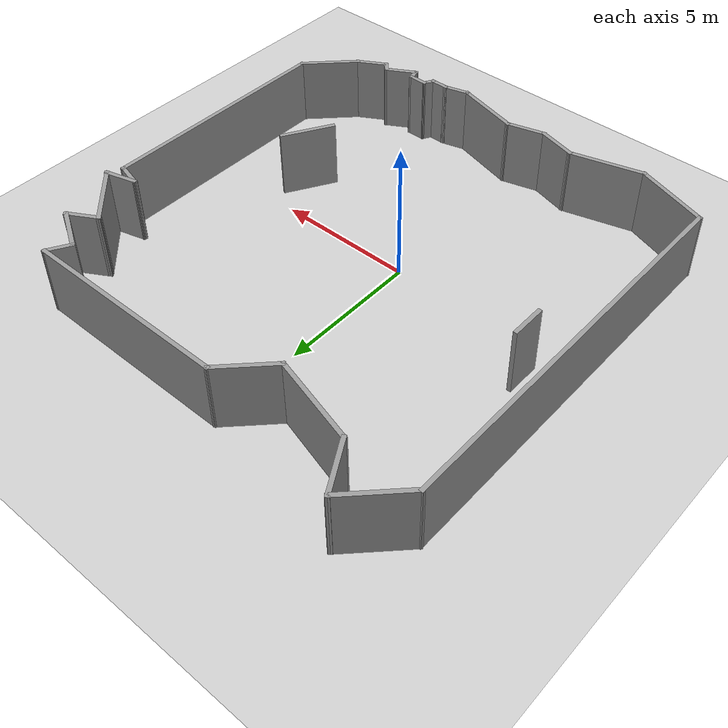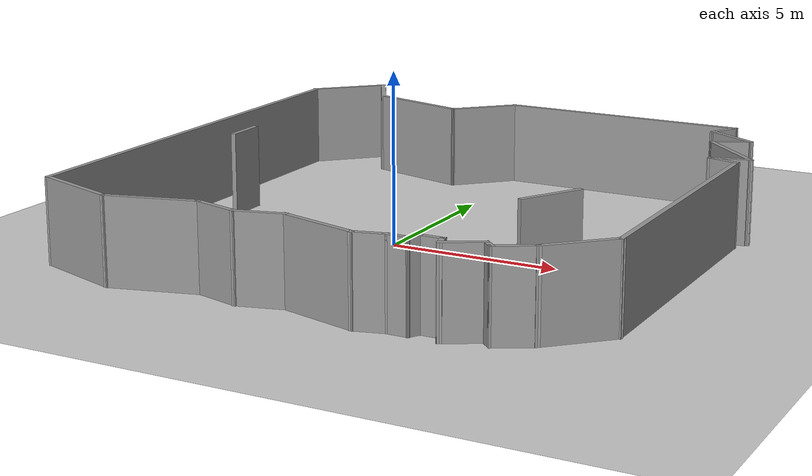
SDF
<sdf version="1.6">
 <world name="default">
  <light name="sun" type="directional">
   <pose>0 0 10 0 -0 0</pose>
   <diffuse>0.8 0.8 0.8 1</diffuse>
   <specular>0.2 0.2 0.2 1</specular>
   <attenuation>
    <range>1000</range>
    <constant>0.9</constant>
    <linear>0.01</linear>
    <quadratic>0.001</quadratic>
   </attenuation>
   <direction>-0.5 0.1 -0.9</direction>
  </light>
  <model name="ground_plane">
   <static>1</static>
   <link name="link">
    <collision name="collision">
     <geometry><plane><normal>0 0 1</normal><size>100 100</size></plane></geometry>
     <surface>
      <contact><collide_bitmask>65535</collide_bitmask></contact>
      <friction><ode><mu>100</mu><mu2>50</mu2></ode></friction>
     </surface>
    </collision>
    <visual name="visual">
     <cast_shadows>0</cast_shadows>
     <geometry><plane><normal>0 0 1</normal><size>100 100</size></plane></geometry>
     <material>
      <script><uri>file://media/materials/scripts/gazebo.material</uri><name>Gazebo/Grey</name></script>
     </material>
    </visual>
   </link>
  </model>
  <gravity>0 0 -9.8</gravity>
  <magnetic_field>6e-06 2.3e-05 -4.2e-05</magnetic_field>
  <atmosphere type="adiabatic"/>
  <physics name="default_physics" default="0" type="ode">
   <max_step_size>0.001</max_step_size>
   <real_time_factor>1</real_time_factor>
   <real_time_update_rate>1000</real_time_update_rate>
  </physics>
  <scene><ambient>0.4 0.4 0.4 1</ambient><background>0.7 0.7 0.7 1</background><shadows>1</shadows></scene>
  <audio><device>default</device></audio>
  <spherical_coordinates>
   <surface_model>EARTH_WGS84</surface_model>
   <latitude_deg>0</latitude_deg>
   <longitude_deg>0</longitude_deg>
   <elevation>0</elevation>
   <heading_deg>0</heading_deg>
  </spherical_coordinates>
  <model name="odd_room">
   <pose>0.779779 1.20137 0 0 -0 0</pose>
   <link name="Wall_0">
    <collision name="Wall_0_Collision">
     <geometry><box><size>14 0.15 2.5</size></box></geometry>
     <pose>0 0 1.25 0 -0 0</pose>
    </collision>
    <visual name="Wall_0_Visual">
     <pose>0 0 1.25 0 -0 0</pose>
     <geometry><box><size>14 0.15 2.5</size></box></geometry>
     <material>
      <script><uri>file://media/materials/scripts/gazebo.material</uri><name>Gazebo/Grey</name></script>
      <ambient>1 1 1 1</ambient>
     </material>
     <meta><layer>0</layer></meta>
    </visual>
    <pose>-8.04285 -0.412639 0 0 -0 1.5708</pose>
   </link>
   <link name="Wall_1">
    <collision name="Wall_1_Collision">
     <geometry><box><size>2.5 0.15 2.5</size></box></geometry>
     <pose>0 0 1.25 0 -0 0</pose>
    </collision>
    <visual name="Wall_1_Visual">
     <pose>0 0 1.25 0 -0 0</pose>
     <geometry><box><size>2.5 0.15 2.5</size></box></geometry>
     <material>
      <script><uri>file://media/materials/scripts/gazebo.material</uri><name>Gazebo/Grey</name></script>
      <ambient>1 1 1 1</ambient>
     </material>
     <meta><layer>0</layer></meta>
    </visual>
    <pose>-7.212 7.34321 0 0 -0 0.785398</pose>
   </link>
   <link name="Wall_10">
    <collision name="Wall_10_Collision">
     <geometry><box><size>1.25 0.15 2.5</size></box></geometry>
     <pose>0 0 1.25 0 -0 0</pose>
    </collision>
    <visual name="Wall_10_Visual">
     <pose>0 0 1.25 0 -0 0</pose>
     <geometry><box><size>1.25 0.15 2.5</size></box></geometry>
     <material>
      <script><uri>file://media/materials/scripts/gazebo.material</uri><name>Gazebo/Grey</name></script>
      <ambient>1 1 1 1</ambient>
     </material>
     <meta><layer>0</layer></meta>
    </visual>
    <pose>7.51159 3.36433 0 0 -0 -2.87979</pose>
   </link>
   <link name="Wall_11">
    <collision name="Wall_11_Collision">
     <geometry><box><size>1 0.15 2.5</size></box></geometry>
     <pose>0 0 1.25 0 -0 0</pose>
    </collision>
    <visual name="Wall_11_Visual">
     <pose>0 0 1.25 0 -0 0</pose>
     <geometry><box><size>1 0.15 2.5</size></box></geometry>
     <material>
      <script><uri>file://media/materials/scripts/gazebo.material</uri><name>Gazebo/Grey</name></script>
      <ambient>1 1 1 1</ambient>
     </material>
     <meta><layer>0</layer></meta>
    </visual>
    <pose>7.39085 3.11198 0 0 -0 -0.261799</pose>
   </link>
   <link name="Wall_12">
    <collision name="Wall_12_Collision">
     <geometry><box><size>8.75 0.15 2.5</size></box></geometry>
     <pose>0 0 1.25 0 -0 0</pose>
    </collision>
    <visual name="Wall_12_Visual">
     <pose>0 0 1.25 0 -0 0</pose>
     <geometry><box><size>8.75 0.15 2.5</size></box></geometry>
     <material>
      <script><uri>file://media/materials/scripts/gazebo.material</uri><name>Gazebo/Grey</name></script>
      <ambient>1 1 1 1</ambient>
     </material>
     <meta><layer>0</layer></meta>
    </visual>
    <pose>7.80137 -1.29802 0 0 -0 -1.5708</pose>
   </link>
   <link name="Wall_13">
    <collision name="Wall_13_Collision">
     <geometry><box><size>2.25 0.15 2.5</size></box></geometry>
     <pose>0 0 1.25 0 -0 0</pose>
    </collision>
    <visual name="Wall_13_Visual">
     <pose>0 0 1.25 0 -0 0</pose>
     <geometry><box><size>2.25 0.15 2.5</size></box></geometry>
     <material>
      <script><uri>file://media/materials/scripts/gazebo.material</uri><name>Gazebo/Grey</name></script>
      <ambient>1 1 1 1</ambient>
     </material>
     <meta><layer>0</layer></meta>
    </visual>
    <pose>7.05891 -6.34048 0 0 -0 -2.35619</pose>
   </link>
   <link name="Wall_14">
    <collision name="Wall_14_Collision">
     <geometry><box><size>1.25 0.15 2.5</size></box></geometry>
     <pose>0 0 1.25 0 -0 0</pose>
    </collision>
    <visual name="Wall_14_Visual">
     <pose>0 0 1.25 0 -0 0</pose>
     <geometry><box><size>1.25 0.15 2.5</size></box></geometry>
     <material>
      <script><uri>file://media/materials/scripts/gazebo.material</uri><name>Gazebo/Grey</name></script>
      <ambient>1 1 1 1</ambient>
     </material>
     <meta><layer>0</layer></meta>
    </visual>
    <pose>5.84014 -7.35794 0 0 -0 -2.61799</pose>
   </link>
   <link name="Wall_15">
    <collision name="Wall_15_Collision">
     <geometry><box><size>0.5 0.15 2.5</size></box></geometry>
     <pose>0 0 1.25 0 -0 0</pose>
    </collision>
    <visual name="Wall_15_Visual">
     <pose>0 0 1.25 0 -0 0</pose>
     <geometry><box><size>0.5 0.15 2.5</size></box></geometry>
     <material>
      <script><uri>file://media/materials/scripts/gazebo.material</uri><name>Gazebo/Grey</name></script>
      <ambient>1 1 1 1</ambient>
     </material>
     <meta><layer>0</layer></meta>
    </visual>
    <pose>5.24008 -7.5092 0 0 -0 2.35619</pose>
   </link>
   <link name="Wall_16">
    <collision name="Wall_16_Collision">
     <geometry><box><size>1.25 0.15 2.5</size></box></geometry>
     <pose>0 0 1.25 0 -0 0</pose>
    </collision>
    <visual name="Wall_16_Visual">
     <pose>0 0 1.25 0 -0 0</pose>
     <geometry><box><size>1.25 0.15 2.5</size></box></geometry>
     <material>
      <script><uri>file://media/materials/scripts/gazebo.material</uri><name>Gazebo/Grey</name></script>
      <ambient>1 1 1 1</ambient>
     </material>
     <meta><layer>0</layer></meta>
    </visual>
    <pose>4.64002 -7.66046 0 0 -0 -2.61799</pose>
   </link>
   <link name="Wall_17">
    <collision name="Wall_17_Collision">
     <geometry><box><size>0.5 0.15 2.5</size></box></geometry>
     <pose>0 0 1.25 0 -0 0</pose>
    </collision>
    <visual name="Wall_17_Visual">
     <pose>0 0 1.25 0 -0 0</pose>
     <geometry><box><size>0.5 0.15 2.5</size></box></geometry>
     <material>
      <script><uri>file://media/materials/scripts/gazebo.material</uri><name>Gazebo/Grey</name></script>
      <ambient>1 1 1 1</ambient>
     </material>
     <meta><layer>0</layer></meta>
    </visual>
    <pose>4.11841 -7.76642 0 0 -0 1.8326</pose>
   </link>
   <link name="Wall_18">
    <collision name="Wall_18_Collision">
     <geometry><box><size>0.75 0.15 2.5</size></box></geometry>
     <pose>0 0 1.25 0 -0 0</pose>
    </collision>
    <visual name="Wall_18_Visual">
     <pose>0 0 1.25 0 -0 0</pose>
     <geometry><box><size>0.75 0.15 2.5</size></box></geometry>
     <material>
      <script><uri>file://media/materials/scripts/gazebo.material</uri><name>Gazebo/Grey</name></script>
      <ambient>1 1 1 1</ambient>
     </material>
     <meta><layer>0</layer></meta>
    </visual>
    <pose>3.77312 -7.59738 0 0 -0 3.14159</pose>
   </link>
   <link name="Wall_19">
    <collision name="Wall_19_Collision">
     <geometry><box><size>0.5 0.15 2.5</size></box></geometry>
     <pose>0 0 1.25 0 -0 0</pose>
    </collision>
    <visual name="Wall_19_Visual">
     <pose>0 0 1.25 0 -0 0</pose>
     <geometry><box><size>0.5 0.15 2.5</size></box></geometry>
     <material>
      <script><uri>file://media/materials/scripts/gazebo.material</uri><name>Gazebo/Grey</name></script>
      <ambient>1 1 1 1</ambient>
     </material>
     <meta><layer>0</layer></meta>
    </visual>
    <pose>3.38562 -7.74894 0 0 -0 -2.0944</pose>
   </link>
   <link name="Wall_2">
    <collision name="Wall_2_Collision">
     <geometry><box><size>2 0.15 2.5</size></box></geometry>
     <pose>0 0 1.25 0 -0 0</pose>
    </collision>
    <visual name="Wall_2_Visual">
     <pose>0 0 1.25 0 -0 0</pose>
     <geometry><box><size>2 0.15 2.5</size></box></geometry>
     <material>
      <script><uri>file://media/materials/scripts/gazebo.material</uri><name>Gazebo/Grey</name></script>
      <ambient>1 1 1 1</ambient>
     </material>
     <meta><layer>0</layer></meta>
    </visual>
    <pose>-5.91865 7.37299 0 0 -0 -1.0472</pose>
   </link>
   <link name="Wall_20">
    <collision name="Wall_20_Collision">
     <geometry><box><size>0.75 0.15 2.5</size></box></geometry>
     <pose>0 0 1.25 0 -0 0</pose>
    </collision>
    <visual name="Wall_20_Visual">
     <pose>0 0 1.25 0 -0 0</pose>
     <geometry><box><size>0.75 0.15 2.5</size></box></geometry>
     <material>
      <script><uri>file://media/materials/scripts/gazebo.material</uri><name>Gazebo/Grey</name></script>
      <ambient>1 1 1 1</ambient>
     </material>
     <meta><layer>0</layer></meta>
    </visual>
    <pose>2.99812 -7.90049 0 0 -0 3.14159</pose>
   </link>
   <link name="Wall_21">
    <collision name="Wall_21_Collision">
     <geometry><box><size>0.15 0.15 2.5</size></box></geometry>
     <pose>0 0 1.25 0 -0 0</pose>
    </collision>
    <visual name="Wall_21_Visual">
     <pose>0 0 1.25 0 -0 0</pose>
     <geometry><box><size>0.15 0.15 2.5</size></box></geometry>
     <material>
      <script><uri>file://media/materials/scripts/gazebo.material</uri><name>Gazebo/Grey</name></script>
      <ambient>1 1 1 1</ambient>
     </material>
     <meta><layer>0</layer></meta>
    </visual>
    <pose>2.69812 -7.90049 0 0 -0 0</pose>
   </link>
   <link name="Wall_22">
    <collision name="Wall_22_Collision">
     <geometry><box><size>1 0.15 2.5</size></box></geometry>
     <pose>0 0 1.25 0 -0 0</pose>
    </collision>
    <visual name="Wall_22_Visual">
     <pose>0 0 1.25 0 -0 0</pose>
     <geometry><box><size>1 0.15 2.5</size></box></geometry>
     <material>
      <script><uri>file://media/materials/scripts/gazebo.material</uri><name>Gazebo/Grey</name></script>
      <ambient>1 1 1 1</ambient>
     </material>
     <meta><layer>0</layer></meta>
    </visual>
    <pose>2.2876 -8.01049 0 0 -0 -2.87979</pose>
   </link>
   <link name="Wall_23">
    <collision name="Wall_23_Collision">
     <geometry><box><size>2.5 0.15 2.5</size></box></geometry>
     <pose>0 0 1.25 0 -0 0</pose>
    </collision>
    <visual name="Wall_23_Visual">
     <pose>0 0 1.25 0 -0 0</pose>
     <geometry><box><size>2.5 0.15 2.5</size></box></geometry>
     <material>
      <script><uri>file://media/materials/scripts/gazebo.material</uri><name>Gazebo/Grey</name></script>
      <ambient>1 1 1 1</ambient>
     </material>
     <meta><layer>0</layer></meta>
    </visual>
    <pose>0.742119 -7.81637 0 0 -0 2.87979</pose>
   </link>
   <link name="Wall_24">
    <collision name="Wall_24_Collision">
     <geometry><box><size>1.5 0.15 2.5</size></box></geometry>
     <pose>0 0 1.25 0 -0 0</pose>
    </collision>
    <visual name="Wall_24_Visual">
     <pose>0 0 1.25 0 -0 0</pose>
     <geometry><box><size>1.5 0.15 2.5</size></box></geometry>
     <material>
      <script><uri>file://media/materials/scripts/gazebo.material</uri><name>Gazebo/Grey</name></script>
      <ambient>1 1 1 1</ambient>
     </material>
     <meta><layer>0</layer></meta>
    </visual>
    <pose>-1.04484 -7.68696 0 0 -0 -2.87979</pose>
   </link>
   <link name="Wall_25">
    <collision name="Wall_25_Collision">
     <geometry><box><size>1.5 0.15 2.5</size></box></geometry>
     <pose>0 0 1.25 0 -0 0</pose>
    </collision>
    <visual name="Wall_25_Visual">
     <pose>0 0 1.25 0 -0 0</pose>
     <geometry><box><size>1.5 0.15 2.5</size></box></geometry>
     <material>
      <script><uri>file://media/materials/scripts/gazebo.material</uri><name>Gazebo/Grey</name></script>
      <ambient>1 1 1 1</ambient>
     </material>
     <meta><layer>0</layer></meta>
    </visual>
    <pose>-2.34884 -7.68696 0 0 -0 2.87979</pose>
   </link>
   <link name="Wall_26">
    <collision name="Wall_26_Collision">
     <geometry><box><size>2.75 0.15 2.5</size></box></geometry>
     <pose>0 0 1.25 0 -0 0</pose>
    </collision>
    <visual name="Wall_26_Visual">
     <pose>0 0 1.25 0 -0 0</pose>
     <geometry><box><size>2.75 0.15 2.5</size></box></geometry>
     <material>
      <script><uri>file://media/materials/scripts/gazebo.material</uri><name>Gazebo/Grey</name></script>
      <ambient>1 1 1 1</ambient>
     </material>
     <meta><layer>0</layer></meta>
    </visual>
    <pose>-4.25655 -7.84873 0 0 -0 -2.87979</pose>
   </link>
   <link name="Wall_27">
    <collision name="Wall_27_Collision">
     <geometry><box><size>2.81876 0.15 2.5</size></box></geometry>
     <pose>0 0 1.25 0 -0 0</pose>
    </collision>
    <visual name="Wall_27_Visual">
     <pose>0 0 1.25 0 -0 0</pose>
     <geometry><box><size>2.81876 0.15 2.5</size></box></geometry>
     <material>
      <script><uri>file://media/materials/scripts/gazebo.material</uri><name>Gazebo/Grey</name></script>
      <ambient>1 1 1 1</ambient>
     </material>
     <meta><layer>0</layer></meta>
    </visual>
    <pose>-6.77755 -7.76142 0 0 -0 2.81841</pose>
   </link>
   <link name="Wall_29">
    <collision name="Wall_29_Collision">
     <geometry><box><size>2 0.15 2.5</size></box></geometry>
     <pose>0 0 1.25 0 -0 0</pose>
    </collision>
    <visual name="Wall_29_Visual">
     <pose>0 0 1.25 0 -0 0</pose>
     <geometry><box><size>2 0.15 2.5</size></box></geometry>
     <material>
      <script><uri>file://media/materials/scripts/gazebo.material</uri><name>Gazebo/Grey</name></script>
      <ambient>1 1 1 1</ambient>
     </material>
     <meta><layer>0</layer></meta>
    </visual>
    <pose>4.64844 -2.60188 0 0 -0 -2.0944</pose>
   </link>
   <link name="Wall_3">
    <collision name="Wall_3_Collision">
     <geometry><box><size>3.25 0.15 2.5</size></box></geometry>
     <pose>0 0 1.25 0 -0 0</pose>
    </collision>
    <visual name="Wall_3_Visual">
     <pose>0 0 1.25 0 -0 0</pose>
     <geometry><box><size>3.25 0.15 2.5</size></box></geometry>
     <material>
      <script><uri>file://media/materials/scripts/gazebo.material</uri><name>Gazebo/Grey</name></script>
      <ambient>1 1 1 1</ambient>
     </material>
     <meta><layer>0</layer></meta>
    </visual>
    <pose>-3.95897 6.17075 0 0 -0 -0.261799</pose>
   </link>
   <link name="Wall_32">
    <collision name="Wall_32_Collision">
     <geometry><box><size>1.25 0.15 2.5</size></box></geometry>
     <pose>0 0 1.25 0 -0 0</pose>
    </collision>
    <visual name="Wall_32_Visual">
     <pose>0 0 1.25 0 -0 0</pose>
     <geometry><box><size>1.25 0.15 2.5</size></box></geometry>
     <material>
      <script><uri>file://media/materials/scripts/gazebo.material</uri><name>Gazebo/Grey</name></script>
      <ambient>1 1 1 1</ambient>
     </material>
     <meta><layer>0</layer></meta>
    </visual>
    <pose>-6.60511 0.00464 0 0 -0 -1.5708</pose>
   </link>
   <link name="Wall_4">
    <collision name="Wall_4_Collision">
     <geometry><box><size>2.25 0.15 2.5</size></box></geometry>
     <pose>0 0 1.25 0 -0 0</pose>
    </collision>
    <visual name="Wall_4_Visual">
     <pose>0 0 1.25 0 -0 0</pose>
     <geometry><box><size>2.25 0.15 2.5</size></box></geometry>
     <material>
      <script><uri>file://media/materials/scripts/gazebo.material</uri><name>Gazebo/Grey</name></script>
      <ambient>1 1 1 1</ambient>
     </material>
     <meta><layer>0</layer></meta>
    </visual>
    <pose>-1.71932 6.51204 0 0 -0 0.785398</pose>
   </link>
   <link name="Wall_5">
    <collision name="Wall_5_Collision">
     <geometry><box><size>7.5 0.15 2.5</size></box></geometry>
     <pose>0 0 1.25 0 -0 0</pose>
    </collision>
    <visual name="Wall_5_Visual">
     <pose>0 0 1.25 0 -0 0</pose>
     <geometry><box><size>7.5 0.15 2.5</size></box></geometry>
     <material>
      <script><uri>file://media/materials/scripts/gazebo.material</uri><name>Gazebo/Grey</name></script>
      <ambient>1 1 1 1</ambient>
     </material>
     <meta><layer>0</layer></meta>
    </visual>
    <pose>2.69814 7.2545 0 0 -0 0</pose>
   </link>
   <link name="Wall_6">
    <collision name="Wall_6_Collision">
     <geometry><box><size>1 0.15 2.5</size></box></geometry>
     <pose>0 0 1.25 0 -0 0</pose>
    </collision>
    <visual name="Wall_6_Visual">
     <pose>0 0 1.25 0 -0 0</pose>
     <geometry><box><size>1 0.15 2.5</size></box></geometry>
     <material>
      <script><uri>file://media/materials/scripts/gazebo.material</uri><name>Gazebo/Grey</name></script>
      <ambient>1 1 1 1</ambient>
     </material>
     <meta><layer>0</layer></meta>
    </visual>
    <pose>6.16064 6.88644 0 0 -0 -2.0944</pose>
   </link>
   <link name="Wall_7">
    <collision name="Wall_7_Collision">
     <geometry><box><size>1.75 0.15 2.5</size></box></geometry>
     <pose>0 0 1.25 0 -0 0</pose>
    </collision>
    <visual name="Wall_7_Visual">
     <pose>0 0 1.25 0 -0 0</pose>
     <geometry><box><size>1.75 0.15 2.5</size></box></geometry>
     <material>
      <script><uri>file://media/materials/scripts/gazebo.material</uri><name>Gazebo/Grey</name></script>
      <ambient>1 1 1 1</ambient>
     </material>
     <meta><layer>0</layer></meta>
    </visual>
    <pose>6.64096 6.11838 0 0 -0 -0.523599</pose>
   </link>
   <link name="Wall_8">
    <collision name="Wall_8_Collision">
     <geometry><box><size>1.25 0.15 2.5</size></box></geometry>
     <pose>0 0 1.25 0 -0 0</pose>
    </collision>
    <visual name="Wall_8_Visual">
     <pose>0 0 1.25 0 -0 0</pose>
     <geometry><box><size>1.25 0.15 2.5</size></box></geometry>
     <material>
      <script><uri>file://media/materials/scripts/gazebo.material</uri><name>Gazebo/Grey</name></script>
      <ambient>1 1 1 1</ambient>
     </material>
     <meta><layer>0</layer></meta>
    </visual>
    <pose>6.85747 5.44338 0 0 -0 -2.61799</pose>
   </link>
   <link name="Wall_9">
    <collision name="Wall_9_Collision">
     <geometry><box><size>2.5 0.15 2.5</size></box></geometry>
     <pose>0 0 1.25 0 -0 0</pose>
    </collision>
    <visual name="Wall_9_Visual">
     <pose>0 0 1.25 0 -0 0</pose>
     <geometry><box><size>2.5 0.15 2.5</size></box></geometry>
     <material>
      <script><uri>file://media/materials/scripts/gazebo.material</uri><name>Gazebo/Grey</name></script>
      <ambient>1 1 1 1</ambient>
     </material>
     <meta><layer>0</layer></meta>
    </visual>
    <pose>7.212 4.33753 0 0 -0 -0.785398</pose>
   </link>
   <static>1</static>
  </model>
 </world>
</sdf>
